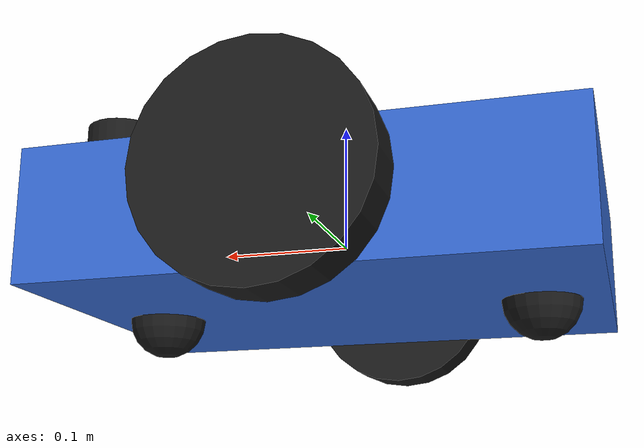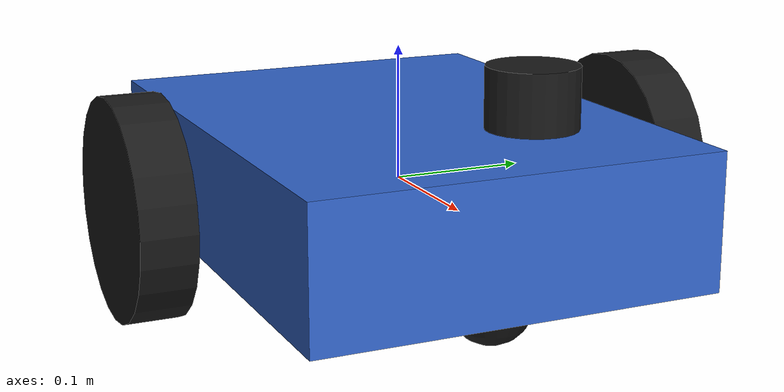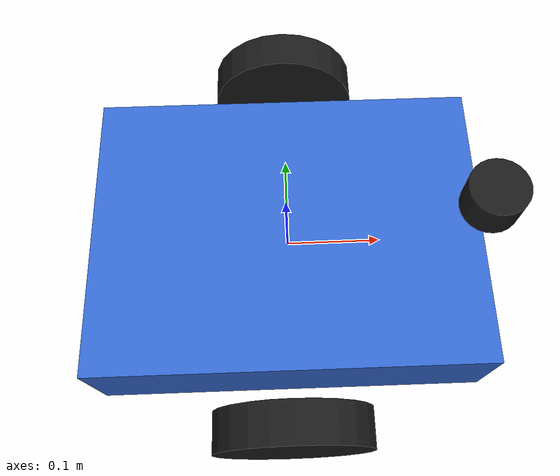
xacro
<robot name="fake_robot" xmlns:xacro="http://www.ros.org/wiki/xacro">
    <xacro:property name="wheel_radius" value="0.08" />
    <xacro:property name="wheel_width" value="0.04" />
    <xacro:property name="track" value="0.4" />
    <xacro:property name="caster_radius" value="0.03" />
    <xacro:property name="body_x" value="0.4" />
    <xacro:property name="body_y" value="0.3" />
    <xacro:property name="body_z" value="0.1" />
    <xacro:property name="body_mass" value="5.0" />

    <gazebo>
        <plugin filename="gz-sim-joint-state-publisher-system"
            name="gz::sim::systems::JointStatePublisher">
        </plugin>

        <plugin filename="gz-sim-odometry-publisher-system"
            name="gz::sim::systems::OdometryPublisher">
            <odom_topic>ground_truth</odom_topic>
            <odom_frame>odom</odom_frame>
            <robot_base_frame>base_link</robot_base_frame>
            <odom_publish_frequency>30</odom_publish_frequency>
            <dimensions>2</dimensions>
        </plugin>

        <plugin filename="gz-sim-diff-drive-system"
            name="gz::sim::systems::DiffDrive">
            <frame_id>odom</frame_id>
            <child_frame_id>base_link</child_frame_id>
            <tf_topic>/tf</tf_topic>
            <left_joint>left_wheel_joint</left_joint>
            <right_joint>right_wheel_joint</right_joint>
            <wheel_separation>${track}</wheel_separation>
            <wheel_radius>${wheel_radius}</wheel_radius>
            <topic>cmd_vel</topic>
            <odom_topic>odom</odom_topic>
            <odom_publish_frequency>30</odom_publish_frequency>
        </plugin>
    </gazebo>

    <gazebo reference="laser">
        <sensor name="lidar" type="gpu_lidar">
            <topic>scan</topic>
            <gz_frame_id>laser</gz_frame_id>
            <update_rate>10</update_rate>

            <lidar>
                <scan>
                    <horizontal>
                        <samples>360</samples>
                        <resolution>1</resolution>
                        <min_angle>${-pi}</min_angle>
                        <max_angle>${pi}</max_angle>
                    </horizontal>
                </scan>

                <range>
                    <min>0.12</min>
                    <max>10.0</max>
                    <resolution>0.01</resolution>
                </range>
            </lidar>

            <alwaysOn>1</alwaysOn>
            <visualize>true</visualize>
        </sensor>

    </gazebo>

    <material name="blue">
        <color rgba="0.2 0.4 0.8 1.0" />
    </material>
    <material name="black">
        <color rgba="0.1 0.1 0.1 1.0" />
    </material>

    <xacro:macro name="box_inertia" params="m w d h">
        <inertial>
            <origin xyz="0 0 0" />
            <mass value="${m}" />
            <inertia ixx="${m*( d*d + h*h )/12}"
                iyy="${m*( w*w + h*h )/12}"
                izz="${m*( w*w + d*d )/12}"
                ixy="0" ixz="0" iyz="0" />
        </inertial>
    </xacro:macro>

    <xacro:macro name="cylinder_inertia" params="m r l rpy">
        <inertial>
            <origin rpy="${rpy}" xyz="0 0 0" />
            <mass value="${m}" />
            <inertia ixx="${m * (3 * r * r + l * l) / 12}"
                iyy="${m * (3 * r * r + l * l) / 12}"
                izz="${m*r*r/2}"
                ixy="0" ixz="0" iyz="0" />
        </inertial>
    </xacro:macro>

    <xacro:macro name="sphere_inertia" params="m r">
        <inertial>
            <origin xyz="0 0 0" />
            <mass value="${m}" />
            <inertia ixx="${2 * m * r * r / 5}"
                iyy="${2 * m * r * r / 5}"
                izz="${2 * m * r * r / 5}"
                ixy="0"
                ixz="0"
                iyz="0" />
        </inertial>
    </xacro:macro>

    <xacro:macro name="wheel" params="prefix reflect">
        <link name="${prefix}_wheel">
            <visual>
                <geometry>
                    <cylinder radius="${wheel_radius}" length="${wheel_width}" />
                </geometry>
                <origin rpy="1.5708 0 0" xyz="0 0 0" />
                <material name="black" />
            </visual>

            <collision>
                <geometry>
                    <cylinder radius="${wheel_radius}" length="${wheel_width}" />
                </geometry>
                <origin rpy="1.5708 0 0" xyz="0 0 0" />
            </collision>

            <xacro:cylinder_inertia m="0.5" r="${wheel_radius}" l="${wheel_width}" rpy="1.5708 0 0" />
        </link>

        <joint name="${prefix}_wheel_joint" type="continuous">
            <parent link="base_link" />
            <child link="${prefix}_wheel" />
            <origin xyz="0 ${reflect * track / 2} 0" rpy="0 0 0" />
            <axis xyz="0 1 0" />
        </joint>
    </xacro:macro>

    <xacro:macro name="caster" params="prefix x">
        <link name="${prefix}_caster">
            <visual>
                <geometry>
                    <sphere radius="${caster_radius}" />
                </geometry>
                <material name="black" />
            </visual>

            <collision>
                <geometry>
                    <sphere radius="${caster_radius}" />
                </geometry>
            </collision>

            <xacro:sphere_inertia m="0.1" r="${caster_radius}" />
        </link>

        <joint name="${prefix}_caster_joint" type="fixed">
            <parent link="base_link" />
            <child link="${prefix}_caster" />
            <origin xyz="${x} 0 ${-wheel_radius + caster_radius}" rpy="0 0 0" />
        </joint>
    </xacro:macro>

    <link name="base_link">
        <visual>
            <geometry>
                <box size="${body_x} ${body_y} ${body_z}" />
            </geometry>
            <material name="blue" />
        </visual>

        <collision>
            <geometry>
                <box size="${body_x} ${body_y} ${body_z}" />
            </geometry>
        </collision>

        <xacro:box_inertia m="${body_mass}" w="${body_x}" d="${body_y}" h="${body_z}" />
    </link>

    <link name="laser">
        <visual>
            <geometry>
                <cylinder radius="0.03" length="0.04" />
            </geometry>
            <material name="black" />
        </visual>

        <collision>
            <geometry>
                <cylinder radius="0.03" length="0.04" />
            </geometry>
        </collision>

        <xacro:cylinder_inertia m="0.2" r="0.03" l="0.04" rpy="0 0 0" />
    </link>

    <joint name="laser_joint" type="fixed">
        <parent link="base_link" />
        <child link="laser" />
        <origin xyz="0.2 0 0.1" rpy="0 0 0" />
    </joint>

    <xacro:caster prefix="front" x="0.15" />
    <xacro:caster prefix="back" x="-0.15" />

    <xacro:wheel prefix="left" reflect="1" />

    <xacro:wheel prefix="right" reflect="-1" />
</robot>
